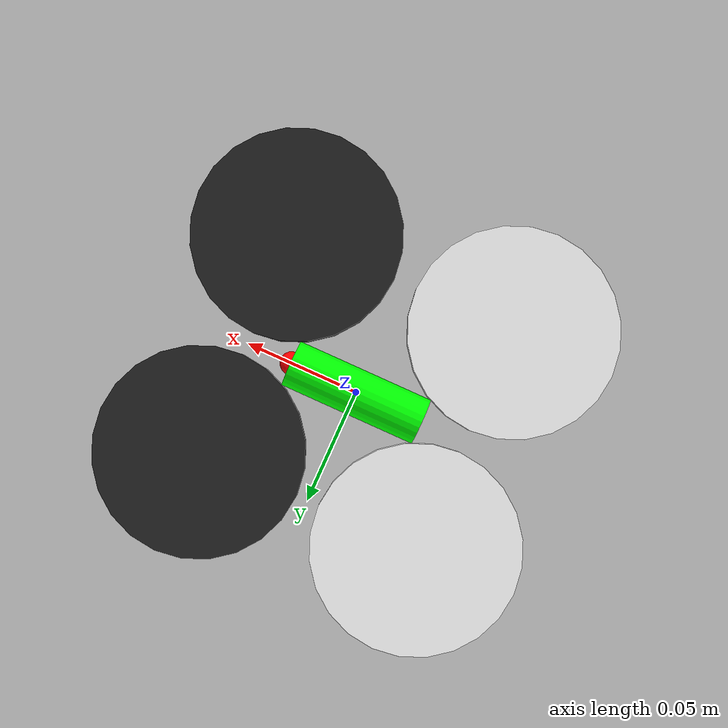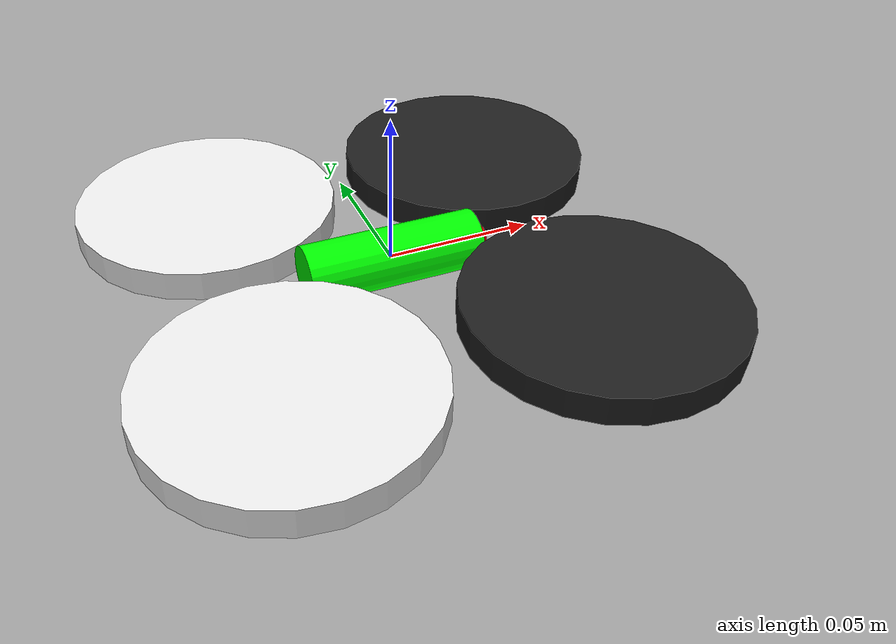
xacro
<?xml version="1.0"?>
<robot name="tello" xmlns:xacro="http://www.ros.org/wiki/xacro">
    <!-- Materials -->
    <material name="Gray">
        <color rgba="0.5 0.5 0.5 1.0"/>
    </material>
    <material name="White">
        <color rgba="0.9 0.9 0.9 1.0"/>
    </material>
    <material name="Red">
        <color rgba="1.0 0 0 1.0"/>
    </material>
    <material name="Green">
        <color rgba="0 1.0 0 1.0"/>
    </material>
    <material name="Blue">
        <color rgba="0 0 1.0 1.0"/>
    </material>
    <material name="Orange">
        <color rgba="1.0 0.42 0.04 1.0"/>
    </material>
    <material name="Brown">
        <color rgba="0.87 0.81 0.76 1.0"/>
    </material>
    <material name="Yellow">
        <color rgba="1.0 1.0 0 1.0"/>
    </material>

    <!-- Variables -->
    <xacro:arg name="base_color_arg" default="Green"/>
    <xacro:arg name="suffix" default="1"/>
    <xacro:arg name="cam_needed" default="true"/>

    <xacro:property name="base_length" value="0.06"/>
    <xacro:property name="base_radius" value="0.01"/>
    <xacro:property name="prop_length" value="0.01"/>
    <xacro:property name="prop_radius" value="0.045"/>

    <!-- Macros -->
    <xacro:macro name="cylinder_inertial" params="mass radius length oz:=0 roll:=0 pitch:=0 yaw:=0">
        <inertial>
        <origin xyz="0 0 ${oz}" rpy="${roll} ${pitch} ${yaw}"/>
        <mass value="${mass}"/>
        <inertia ixx="${mass*(3*radius*radius+length*length)/12}"
            iyy="${mass*(3*radius*radius+length*length)/12}"
            izz="${mass*radius*radius/2}"
            ixy="0" iyz="0" ixz="0"/>
        </inertial>
    </xacro:macro>

    <xacro:macro name="propeller" params="suffix x y z">
        <link name="prop_${suffix}">
            <visual>
                <geometry>
                    <cylinder radius="${prop_radius}" length="${prop_length}"/>
                </geometry>
            </visual>
            <collision>
                <geometry>
                    <cylinder radius="${prop_radius}" length="${prop_length}"/>
                </geometry>
            </collision>
            <xacro:cylinder_inertial mass="0.01" radius="${prop_radius}" length="${prop_length}"/>
        </link>
        <joint name="base_to_prop_${suffix}" type="fixed">
            <parent link="base_link_$(arg suffix)"/>
            <child link="prop_${suffix}"/>
            <origin xyz="${x} ${y} ${z}"/>
        </joint>
    </xacro:macro>

    <!-- *****************BASE LINK************************* -->
    <link name="base_link_$(arg suffix)">
        <visual>
            <origin rpy="0 ${pi/2} 0"/>
            <geometry>
                <cylinder radius="${base_radius}" length="${base_length}"/>
            </geometry>
            <material name="$(arg base_color_arg)"/>
        </visual>
        <collision>
            <origin rpy="0 ${pi/2} 0"/>
            <geometry>
                <cylinder radius="0.01" length="0.06"/>
            </geometry>
        </collision>
        <xacro:cylinder_inertial mass="0.1" radius="${base_radius}" length="${base_length}" pitch="${pi/2}"/>
    </link>

    <xacro:propeller suffix="front_right_$(arg suffix)" x="0.05" y="-0.05" z="0"/>
    <xacro:propeller suffix="rear_left_$(arg suffix)" x="-0.05" y="0.05" z="0"/>
    <xacro:propeller suffix="front_left_$(arg suffix)" x="0.05" y="0.05" z="0"/>
    <xacro:propeller suffix="rear_right_$(arg suffix)" x="-0.05" y="-0.05" z="0"/>

    <!-- Camera link -->
    <link name="camera_link_$(arg suffix)">
        <visual>
            <origin xyz="0 0 0"/>
            <geometry>
                <sphere radius="0.005"/>
            </geometry>
            <material name="Red"/>
        </visual>
    </link>
    <joint name="camera_joint_$(arg suffix)" type="fixed">
        <origin xyz="0.03 0 0" rpy="0 0 0"/>  <!-- TODO fix origin -->
        <parent link="base_link_$(arg suffix)"/>
        <child link="camera_link_$(arg suffix)"/>
    </joint>

    <!-- GAZEBO -->
	<gazebo reference="base_link_$(arg suffix)">
		<material>Gazebo/$(arg base_color_arg)</material>
	</gazebo>
    <gazebo reference="prop_front_left_$(arg suffix)">
		<material>Gazebo/Black</material>
	</gazebo>
    <gazebo reference="prop_front_right_$(arg suffix)">
		<material>Gazebo/Black</material>
	</gazebo>
    <gazebo reference="prop_rear_left_$(arg suffix)">
		<material>Gazebo/White</material>
	</gazebo>
    <gazebo reference="prop_rear_right_$(arg suffix)">
		<material>Gazebo/White</material>
	</gazebo>

    <gazebo reference="camera_link_$(arg suffix)">
        <material>Gazebo/Red</material>

        <xacro:if value="$(arg cam_needed)">
        <sensor type="camera" name="drone$(arg suffix)">
            <always_on>true</always_on>
            <update_rate>30.0</update_rate>
            <visualize>false</visualize>
            <camera name="camera">
                <horizontal_fov>0.96</horizontal_fov>
                <image>
                    <width>960</width>
                    <height>720</height>
                    <format>R8G8B8</format>
                </image>
                <clip>
                    <near>0.1</near>
                    <far>300</far>
                </clip>
                <noise>
                    <type>gaussian</type>
                    <mean>0.0</mean>
                    <stddev>0.007</stddev>
                </noise>
                <distortion>
					<k1>0.0</k1>
					<k2>0.0</k2>
					<k3>0.0</k3>
					<p1>0.0</p1>
					<p2>0.0</p2>
					<center>0.5 0.5</center>
				</distortion>
            </camera>
            <plugin name="camera_controller_$(arg suffix)" filename="libgazebo_ros_camera.so">
                <hack_baseline>0.07</hack_baseline>
            </plugin>
        </sensor>
        </xacro:if>
    </gazebo>

    <gazebo>
        <plugin name="TelloPlugin" filename="libTelloPlugin.so">
            <namespace>drone$(arg suffix)</namespace>
            <parameter name="use_sim_time" type="bool">1</parameter>
            <link_name>base_link_$(arg suffix)</link_name>
            <center_of_mass>0 0 0</center_of_mass>
        </plugin>
    </gazebo>
</robot>
